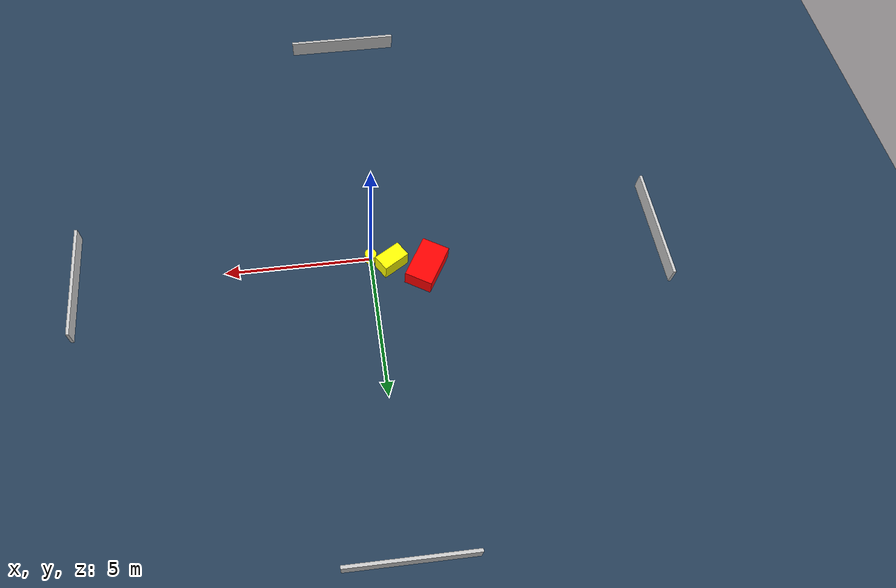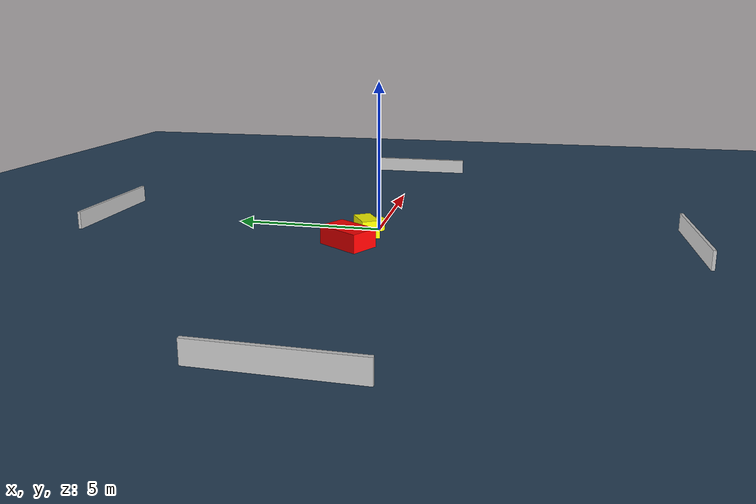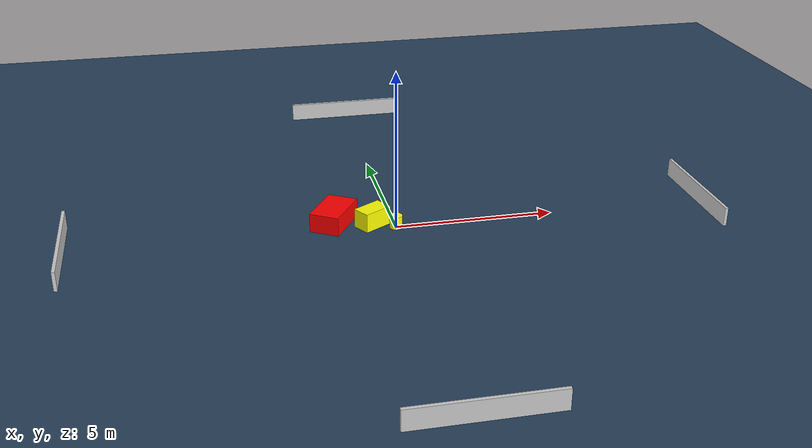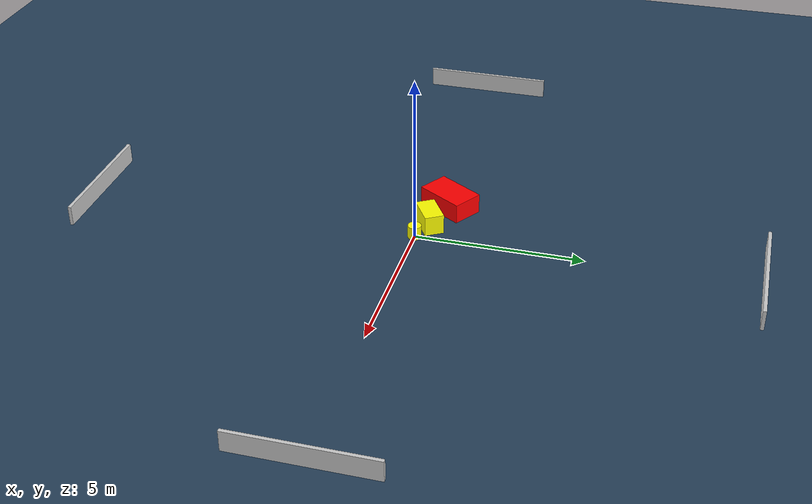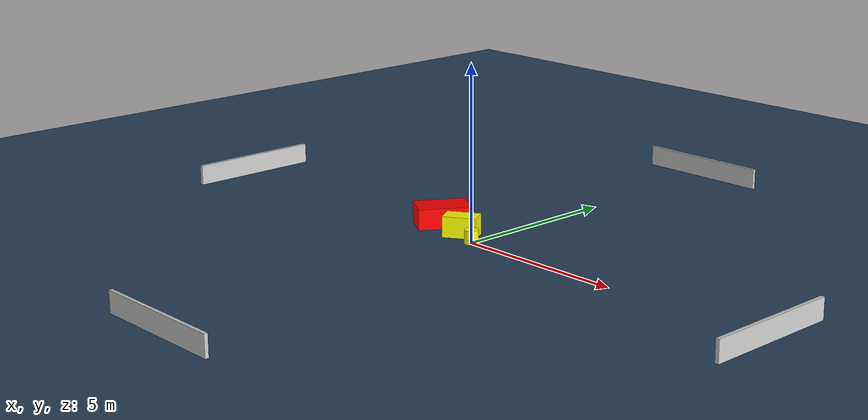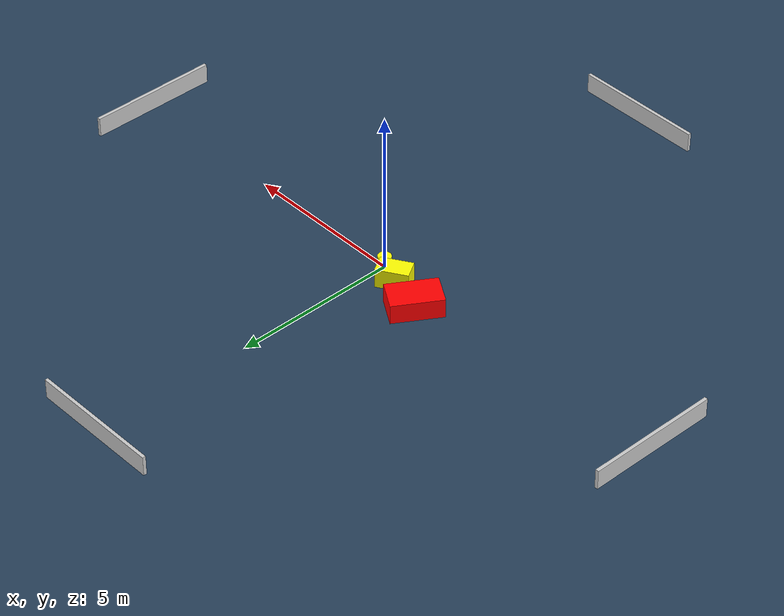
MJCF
<?xml version="1.0" ?>
<mujoco model="generated_environment">
  <option timestep="0.01" integrator="RK4" cone="elliptic"/>
  <default>
    <geom density="1"/>
  </default>
  <asset>
    <texture builtin="gradient" height="3072" name="skybox" rgb1="0.3 0.5 0.7" rgb2="0 0 0" type="skybox" width="512"/>
    <texture builtin="checker" height="300" name="groundplane" rgb1="0.2 0.3 0.4" rgb2="0.1 0.2 0.3" type="2d" width="300"/>
    <material name="groundplane" reflectance="0.2" texrepeat="5 5" texture="groundplane"/>
  </asset>
  <worldbody>
    <light dir="0 0 -1" directional="true" pos="0 0 1.5"/>
    <geom condim="3" friction="0.5 0.005 0.001" material="groundplane" name="floor" pos="0 0 0" size="0 0 0.05" type="plane"/>
    <body name="walls">
      <geom name="wall_1" condim="4" pos="-10.0 0.0 0.3" rgba="0.800000011920929 0.800000011920929 0.800000011920929 1.0" size="0.05 2.0 0.3" type="box"/>
      <geom name="wall_2" condim="4" pos="10.0 0.0 0.3" rgba="0.800000011920929 0.800000011920929 0.800000011920929 1.0" size="0.05 2.0 0.3" type="box"/>
      <geom name="wall_3" condim="4" pos="0.0 -10.0 0.3" rgba="0.800000011920929 0.800000011920929 0.800000011920929 1.0" size="2.0 0.05 0.3" type="box"/>
      <geom name="wall_4" condim="4" pos="0.0 10.0 0.3" rgba="0.800000011920929 0.800000011920929 0.800000011920929 1.0" size="2.0 0.05 0.3" type="box"/>
    </body>
    <body name="robot">
      <joint name="joint_x" type="slide" pos="0 0 0" axis="1 0 0"/>
      <joint name="joint_y" type="slide" pos="0 0 0" axis="0 1 0"/>
      <geom name="robot" type="cylinder" pos="0.0 0.0 0.2" size="0.2 0.2 0.0" mass="5.0" friction="1.0 0.005 0.0001" condim="4" rgba="1.0 1.0 0.0 1.0"/>
    </body>
    <body name="obstacle_1_movable">
      <geom name="obstacle_1_movable" condim="4" pos="-0.6861928165271792 0.2765259808279389 0.3" euler="0 0 121.44688566086846" friction="0.0 0.005 0.001" rgba="1.0 1.0 0.0 1.0" size="0.2900284556891395 0.4817193374406848 0.3" type="box" mass="0.1"/>
      <joint type="free"/>
    </body>
    <body name="obstacle_2_static">
      <geom name="obstacle_2_static" condim="4" pos="-1.8485502221675467 0.6136384970699882 0.3" euler="0 0 238.15216180326905" friction="0.0 0.005 0.001" rgba="1.0 0.0 0.0 1.0" size="0.7611078015562565 0.47647077997012993 0.3" type="box"/>
    </body>
  </worldbody>
  <actuator>
    <motor name="actuator_x" joint="joint_x" gear="1" ctrlrange="-1 1"/>
    <motor name="actuator_y" joint="joint_y" gear="1" ctrlrange="-1 1"/>
  </actuator>
</mujoco>
